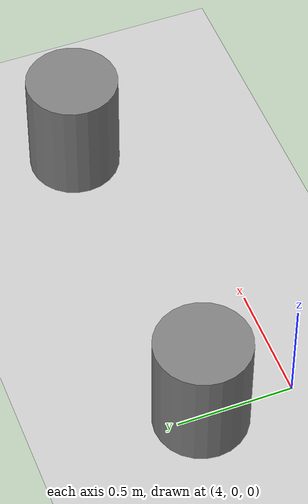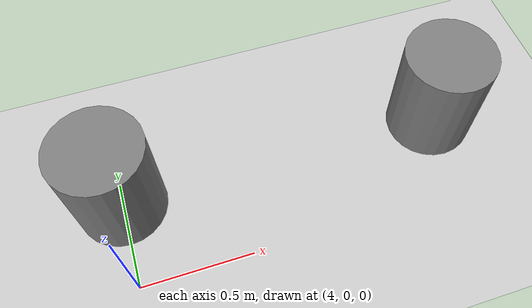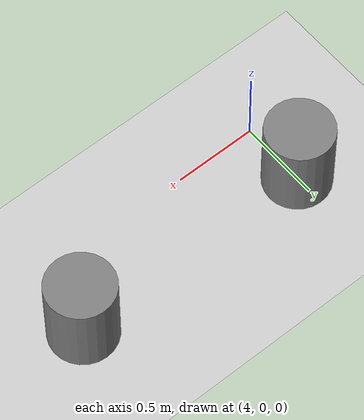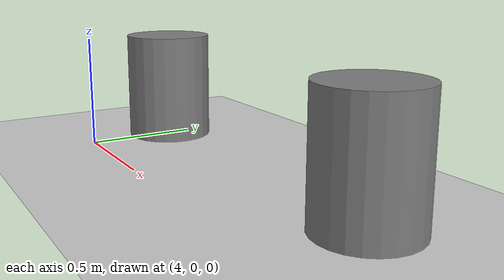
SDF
<?xml version="1.0" ?>
<sdf version="1.5">
    <world name="default">
        <physics type="ode">
            <type>world</type>
            <max_step_size>0.002</max_step_size>
            <real_time_update_rate>500</real_time_update_rate>
            <iters>500</iters>
        </physics>

        <include>
            <uri>model://sun</uri>
        </include>
        <include>
            <uri>model://ground_plane</uri>
        </include>

        <scene>
            <ambient>0.8 0.8 0.8 1</ambient>
            <background>0.9 0.9 0.9 1</background>
            <shadows>false</shadows>
        </scene>

        <!-- cyl_a: (4.0, 0.40) -->
        <model name="cyl_a">
            <static>true</static>
            <pose>4.0 0.40 0.25  0 0 0</pose>
            <link name="link">
                <collision name="col">
                    <geometry><cylinder><radius>0.2</radius><length>0.5</length></cylinder></geometry>
                </collision>
                <visual name="vis">
                    <geometry><cylinder><radius>0.2</radius><length>0.5</length></cylinder></geometry>
                    <material>
                        <ambient>0.5 0.5 0.5 1</ambient>
                        <diffuse>0.5 0.5 0.5 1</diffuse>
                    </material>
                </visual>
            </link>
        </model>

        <!-- cyl_b: (5.5, 0.40) -->
        <model name="cyl_b">
            <static>true</static>
            <pose>5.5 0.40 0.25  0 0 0</pose>
            <link name="link">
                <collision name="col">
                    <geometry><cylinder><radius>0.2</radius><length>0.5</length></cylinder></geometry>
                </collision>
                <visual name="vis">
                    <geometry><cylinder><radius>0.2</radius><length>0.5</length></cylinder></geometry>
                    <material>
                        <ambient>0.5 0.5 0.5 1</ambient>
                        <diffuse>0.5 0.5 0.5 1</diffuse>
                    </material>
                </visual>
            </link>
        </model>

    </world>
</sdf>
